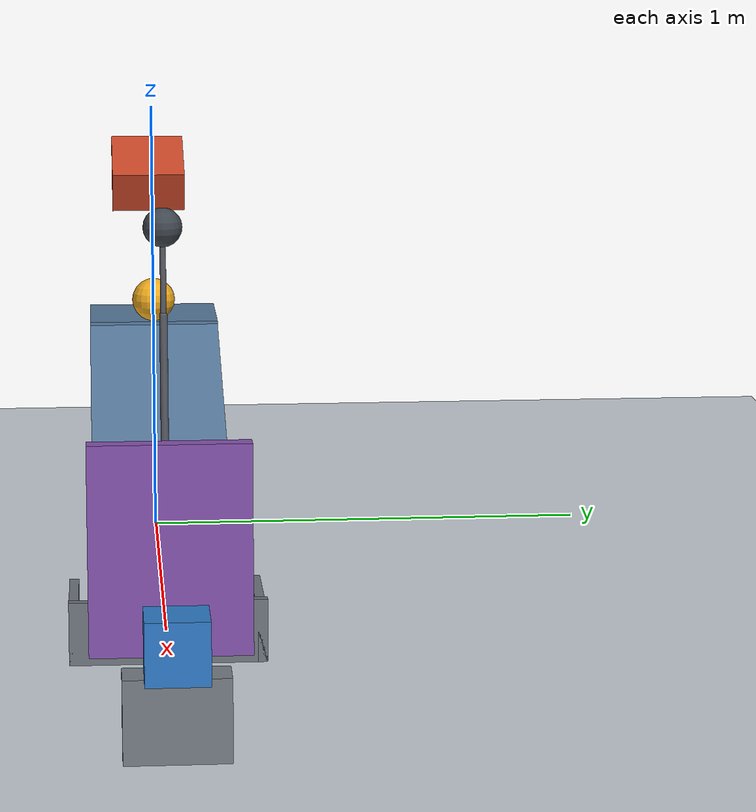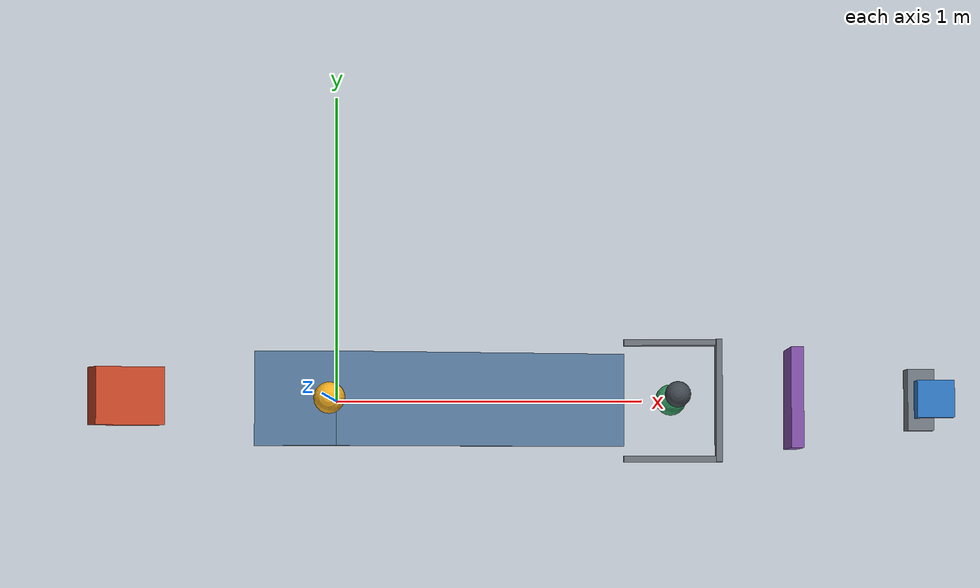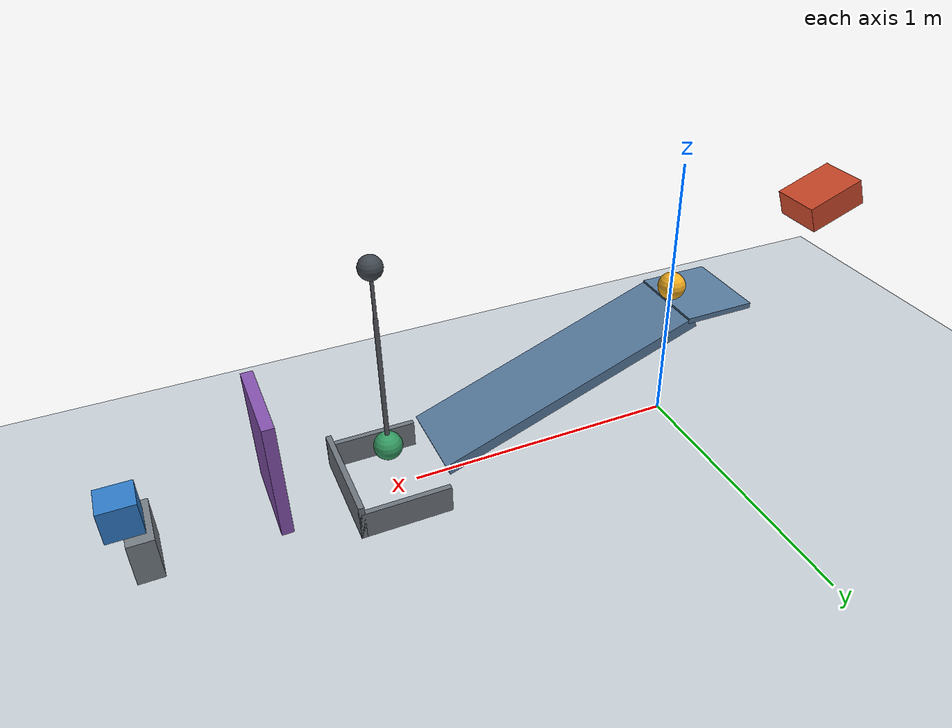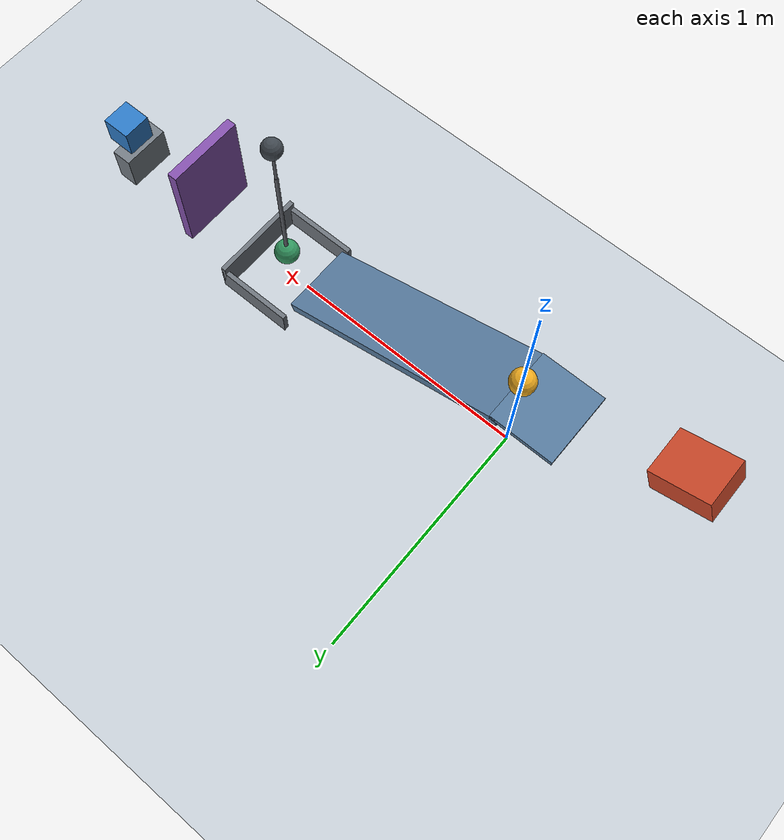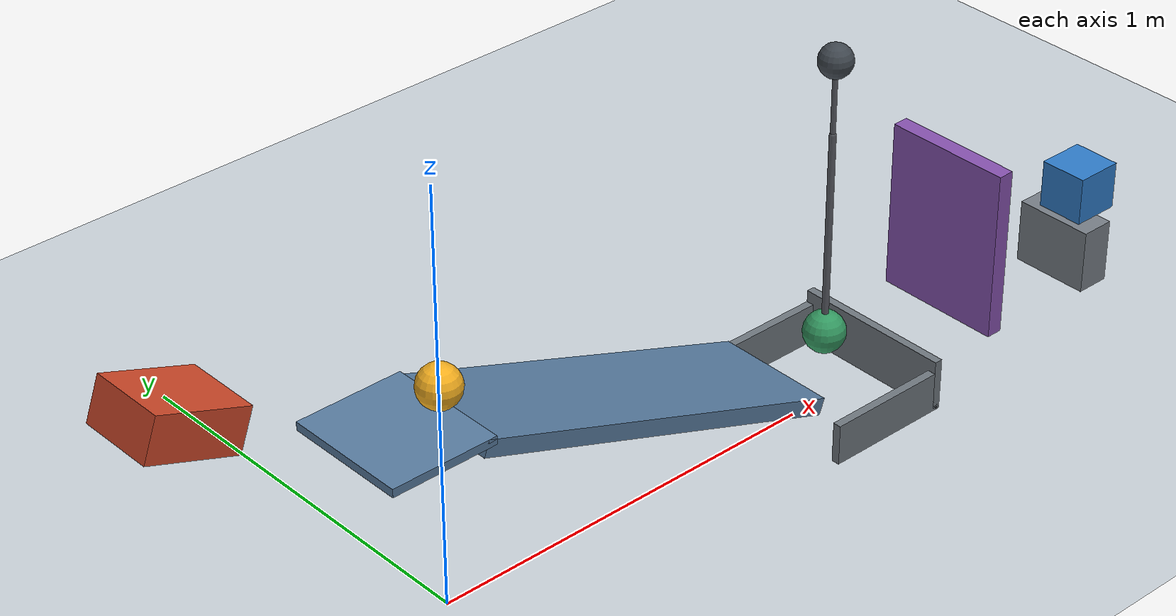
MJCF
<mujoco model="passive_cart_ball_pendulum_door">
  <compiler angle="degree" autolimits="true"/>
  <option timestep="0.002" gravity="0 0 -9.81" integrator="implicitfast" solver="Newton" iterations="100" tolerance="1e-10"/>
  <size njmax="300" nconmax="100"/>

  <!-- MuJoCo has no direct restitution attribute. This solref targets approximately 0.05 restitution; actual rebound depends on the contact dynamics. -->
  <!-- The cart guide descends at 20 degrees. Gravity supplements the initially compressed spring, allowing 0.50 m of travel. -->
  <!-- The pendulum has a 0.50 m pivot-to-bob length and a passive counterweight; its complete moving assembly weighs 0.35 kg. -->
  <!-- Door1 is a bottom-hinged, initially upright flap. Gravity assists its motion after the pendulum tips it. -->
  <!-- Negative hinge angles are clockwise when viewed from the positive side of the respective hinge axis. -->

  <visual>
    <global azimuth="125" elevation="-20"/>
    <headlight ambient="0.45 0.45 0.45" diffuse="0.65 0.65 0.65" specular="0.15 0.15 0.15"/>
    <rgba haze="0.85 0.9 0.95 1"/>
  </visual>

  <worldbody>
    <light name="scene_light" pos="0 -3 5" dir="0 0.5 -1" directional="true"/>
    <camera name="overview" pos="3.2 -4.2 2.5" xyaxes="0.86 0.51 0 -0.20 0.34 0.92"/>

    <geom name="floor" type="plane" size="5 3 0.1" friction="0.68 0.005 0.002" condim="6" solref="0.006 0.690107" solimp="0.99 0.99 0.001" rgba="0.78 0.81 0.84 1"/>

    <body name="ramp1" pos="0 0 0">
      <geom name="ramp1_incline" type="box" pos="0.46300591 0 0.30221622" euler="0 20 0" size="0.50 0.15 0.02" friction="0.68 0.005 0.002" condim="6" solref="0.006 0.690107" solimp="0.99 0.99 0.001" rgba="0.34 0.48 0.62 1"/>
      <!-- A short horizontal launch shelf keeps ball1 stationary until cart1 arrives. -->
      <geom name="ramp1_launch_shelf" type="box" pos="-0.11 0 0.48202014" size="0.13 0.15 0.01" friction="0.68 0.005 0.002" condim="6" solref="0.006 0.690107" solimp="0.99 0.99 0.001" rgba="0.34 0.48 0.62 1"/>
    </body>

    <body name="cart1" pos="-0.62019713 0 0.76775344" euler="0 20 0">
      <joint name="cart1_slide" type="slide" axis="1 0 0" damping="0.20" stiffness="18" springref="0.20" range="-0.01 0.57" solreflimit="0.004 1" solimplimit="0.999 0.999 0.0001"/>
      <geom name="cart1_box" type="box" size="0.11 0.09 0.05" mass="0.50" friction="0.68 0.005 0.002" condim="6" solref="0.006 0.690107" solimp="0.99 0.99 0.001" rgba="0.80 0.28 0.16 1"/>
    </body>

    <body name="ball1" pos="0 0 0.54202014">
      <freejoint name="ball1_free"/>
      <geom name="ball1_sphere" type="sphere" size="0.05" mass="0.20" friction="0.68 0.005 0.002" condim="6" solref="0.006 0.690107" solimp="0.99 0.99 0.001" rgba="0.95 0.68 0.12 1"/>
    </body>

    <!-- Ramp surface low edge: x=0.93969262, z=0.15.
         Initial bob near surface: x=1.03969262, giving a 0.10 m clear gap. -->
    <body name="pendulum1" pos="1.08969262 0 0.684">
      <joint name="pendulum1_hinge" type="hinge" axis="0 1 0" damping="0.04" range="-85 0" solreflimit="0.004 1" solimplimit="0.999 0.999 0.0001"/>
      <inertial pos="0 0 -0.007142857" mass="0.35" diaginertia="0.031666 0.031666 0.00025032"/>
      <geom name="pendulum1_rod" type="capsule" fromto="0 0 0 0 0 -0.50" size="0.008" mass="0" friction="0.68 0.005 0.002" condim="6" solref="0.006 0.690107" solimp="0.99 0.99 0.001" rgba="0.35 0.36 0.39 1"/>
      <geom name="pendulum1_bob" type="sphere" pos="0 0 -0.50" size="0.05" mass="0" friction="0.68 0.005 0.002" condim="6" solref="0.006 0.690107" solimp="0.99 0.99 0.001" rgba="0.20 0.60 0.38 1"/>
      <geom name="pendulum1_counterweight_stem" type="capsule" fromto="0 0 0 0 0 0.18" size="0.006" mass="0" friction="0.68 0.005 0.002" condim="6" solref="0.006 0.690107" solimp="0.99 0.99 0.001" rgba="0.35 0.36 0.39 1"/>
      <geom name="pendulum1_counterweight" type="sphere" pos="0 0 0.18" size="0.04" mass="0" friction="0.68 0.005 0.002" condim="6" solref="0.006 0.690107" solimp="0.99 0.99 0.001" rgba="0.25 0.28 0.31 1"/>
    </body>

    <!-- The resting panel's near face meets the bob at a pendulum angle of -40 degrees. -->
    <body name="door1" pos="1.48108643 0 0.08">
      <joint name="door1_hinge" type="hinge" axis="0 -1 0" damping="0.04" range="-70 0" solreflimit="0.004 1" solimplimit="0.999 0.999 0.0001"/>
      <geom name="door1_panel" type="box" pos="0 0 0.21" size="0.02 0.16 0.21" mass="0.45" friction="0.68 0.005 0.002" condim="6" solref="0.006 0.690107" solimp="0.99 0.99 0.001" rgba="0.52 0.32 0.68 1"/>
    </body>

    <!-- Block contact begins approximately one degree before the door's 70-degree hard stop. -->
    <body name="block1" pos="1.94035743 0 0.22">
      <freejoint name="block1_free"/>
      <geom name="block1_cube" type="box" size="0.06 0.06 0.06" mass="0.35" friction="0.68 0.005 0.002" condim="6" solref="0.006 0.690107" solimp="0.99 0.99 0.001" rgba="0.18 0.48 0.78 1"/>
    </body>

    <body name="block1_pedestal" pos="1.90267872 0 0.08">
      <geom name="block1_pedestal_box" type="box" size="0.04267872 0.10 0.08" friction="0.68 0.005 0.002" condim="6" solref="0.006 0.690107" solimp="0.99 0.99 0.001" rgba="0.46 0.49 0.52 1"/>
    </body>

    <!-- A low catcher stops the spent ball without obstructing the pendulum or allowing the ball to strike the door directly. -->
    <body name="ball1_catcher" pos="0 0 0">
      <geom name="ball1_catcher_end" type="box" pos="1.25 0 0.065" size="0.01 0.20 0.065" friction="0.68 0.005 0.002" condim="6" solref="0.006 0.690107" solimp="0.99 0.99 0.001" rgba="0.43 0.46 0.49 1"/>
      <geom name="ball1_catcher_side_left" type="box" pos="1.10 0.19 0.05" size="0.16 0.01 0.05" friction="0.68 0.005 0.002" condim="6" solref="0.006 0.690107" solimp="0.99 0.99 0.001" rgba="0.43 0.46 0.49 1"/>
      <geom name="ball1_catcher_side_right" type="box" pos="1.10 -0.19 0.05" size="0.16 0.01 0.05" friction="0.68 0.005 0.002" condim="6" solref="0.006 0.690107" solimp="0.99 0.99 0.001" rgba="0.43 0.46 0.49 1"/>
    </body>
  </worldbody>

  <keyframe>
    <key name="start" time="0" qpos="0 0 0 0.54202014 1 0 0 0 0 0 1.94035743 0 0.22 1 0 0 0" qvel="0 0 0 0 0 0 0 0 0 0 0 0 0 0 0"/>
  </keyframe>
</mujoco>
